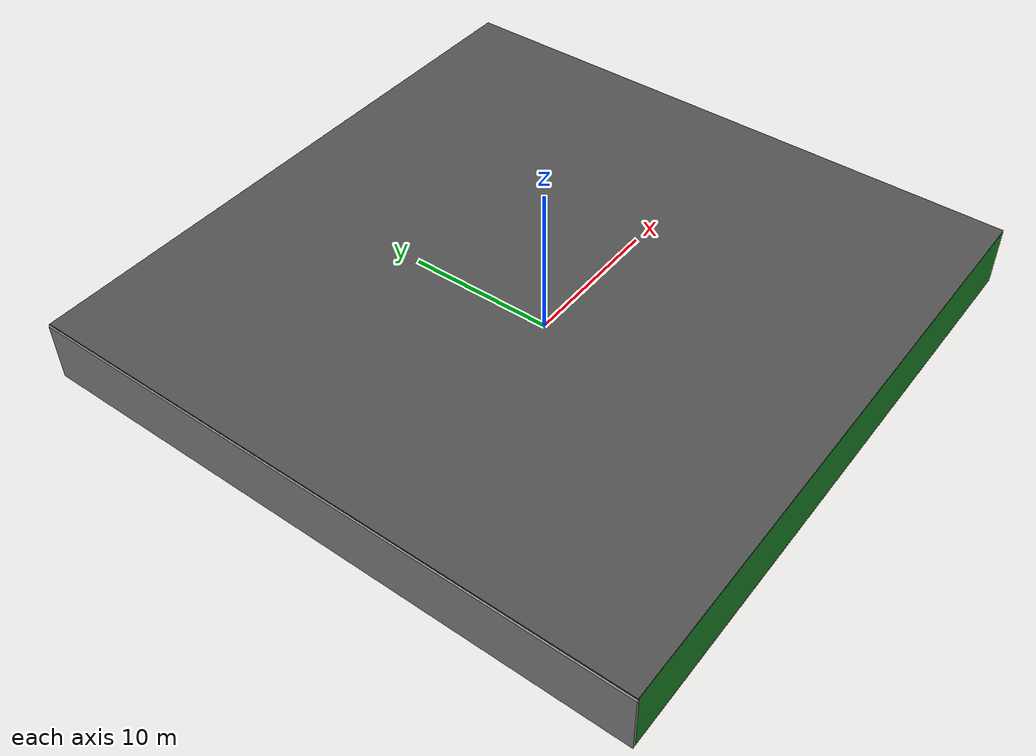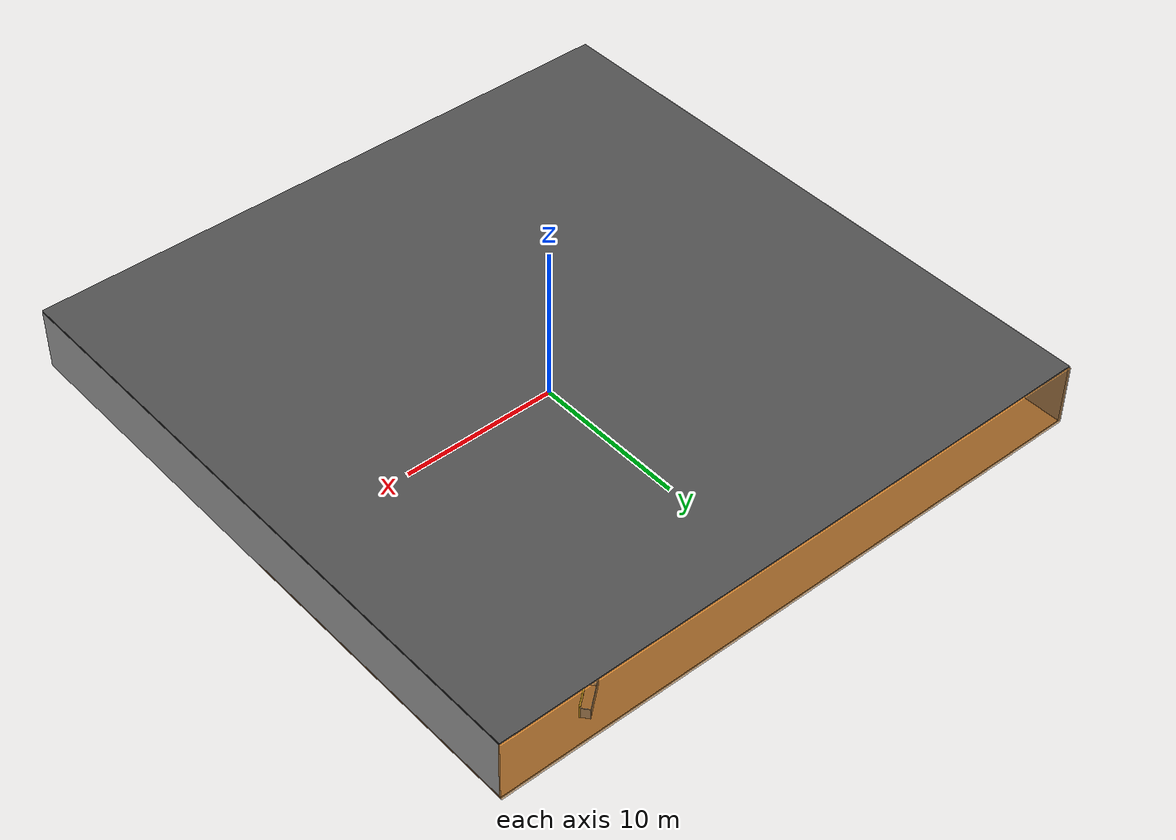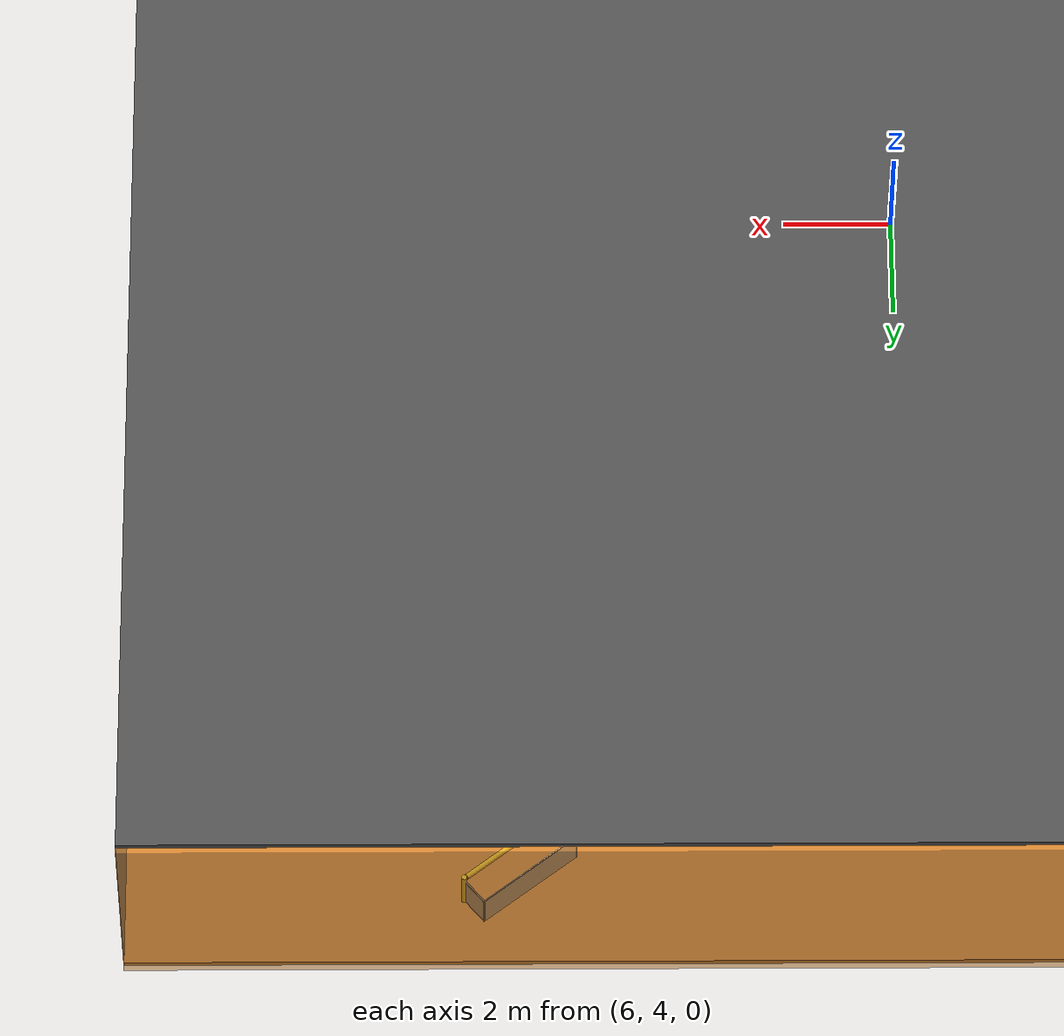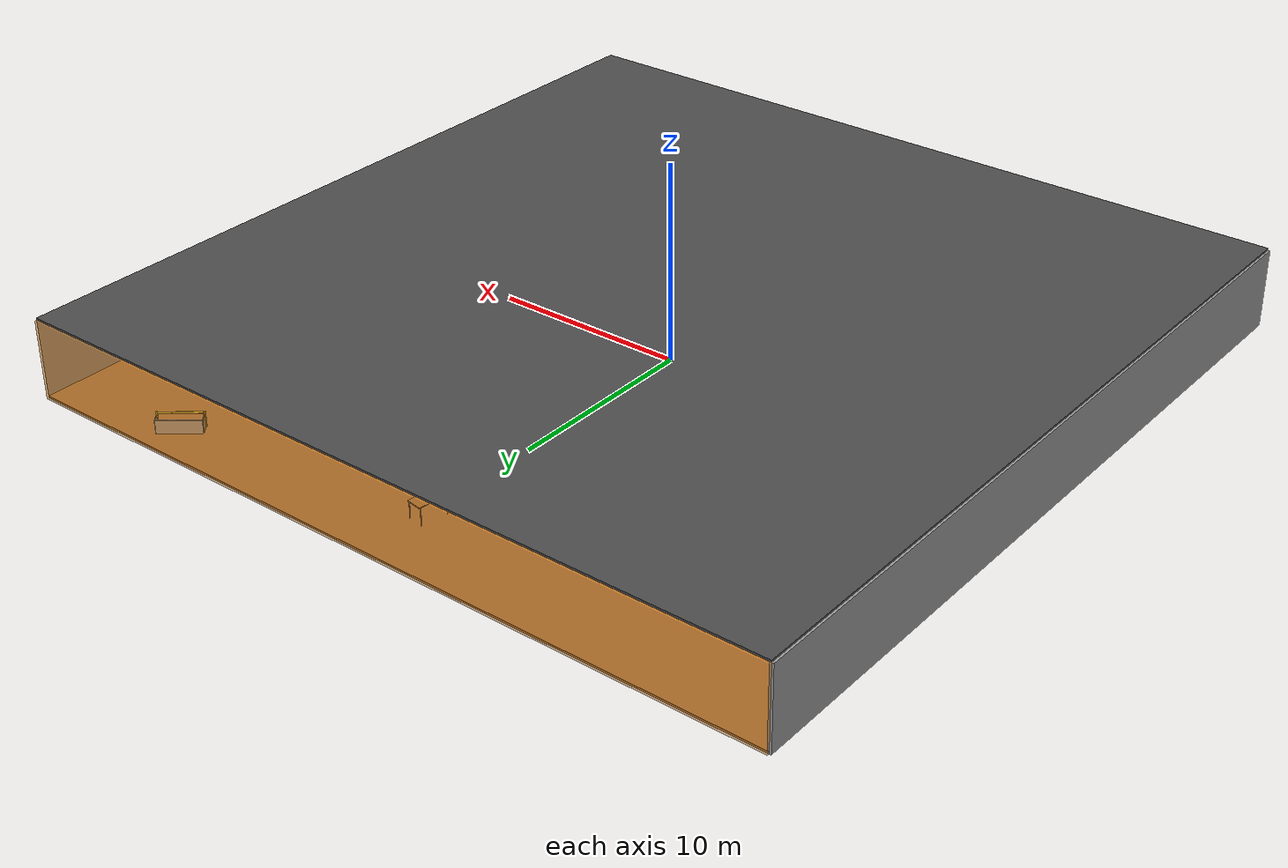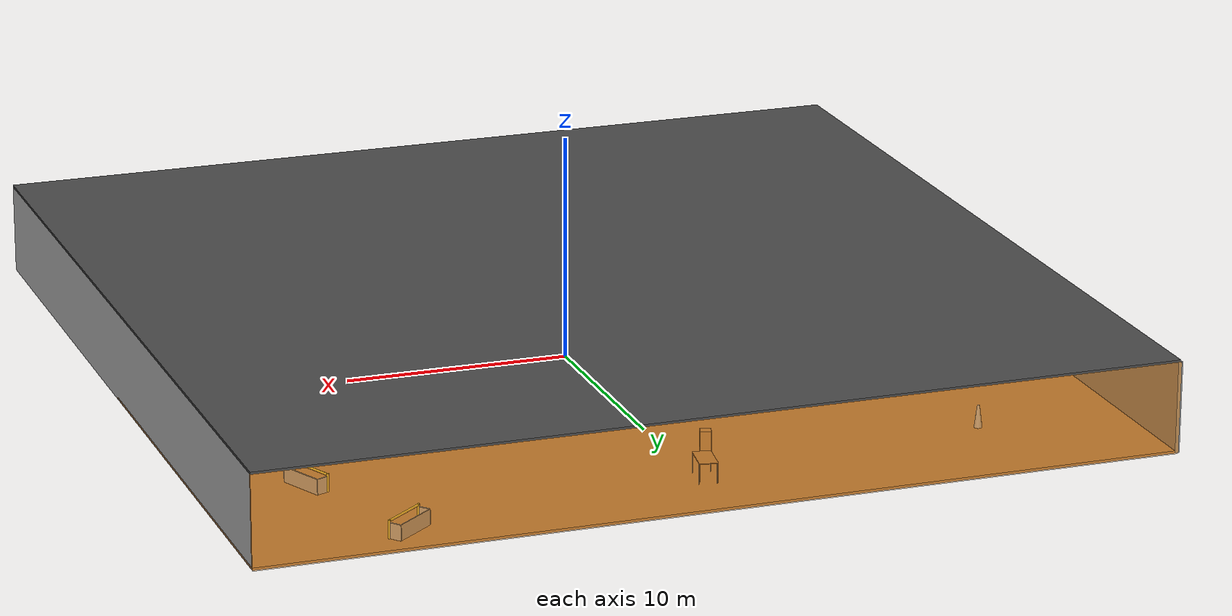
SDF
<sdf version="1.4">
 <world name="default">
  <physics type="ode">
   <max_step_size>0.001</max_step_size>
   <real_time_factor>1</real_time_factor>
   <real_time_update_rate>1000</real_time_update_rate>
   <gravity>0 0 -9.8</gravity>
  </physics>
  <scene><ambient>0.4 0.4 0.4 1</ambient><background>0.7 0.7 0.7 1</background><shadows>1</shadows></scene>
  <model name="Surrounding">
   <static>1</static>
   <link name="Ceiling">
    <collision name="Ceiling_Collision"><geometry><box><size>40 40 0.1</size></box></geometry></collision>
    <visual name="Ceiling_Visual">
     <geometry><box><size>40 40 0.1</size></box></geometry>
     <material>
      <script><uri>file://media/materials/scripts/gazebo.material</uri><name>Gazebo/DarkGrey</name></script>
     </material>
    </visual>
    <pose>0 0 4.05 0 0 0</pose>
   </link>
   <link name="Wall_South">
    <collision name="Wall_South_Collision">
     <geometry><box><size>40 0 4</size></box></geometry>
     <pose>0 0 2 0 -0 0</pose>
    </collision>
    <visual name="Wall_South_Visual">
     <pose>0 0 2 0 -0 0</pose>
     <geometry><box><size>40 0 4</size></box></geometry>
     <material>
      <script><uri>file://media/materials/scripts/gazebo.material</uri><name>Gazebo/GreenGlow</name></script>
     </material>
    </visual>
    <velocity_decay><linear>0</linear><angular>0</angular></velocity_decay>
    <pose>0 -20 0 0 -0 0</pose>
   </link>
   <link name="Wall_East">
    <collision name="Wall_21_Collision">
     <geometry><box><size>40 0 4</size></box></geometry>
     <pose>0 0 2 0 -0 0</pose>
    </collision>
    <visual name="Wall_21_Visual">
     <pose>0 0 2 0 -0 0</pose>
     <geometry><box><size>40 0 4</size></box></geometry>
     <material>
      <script><uri>file://media/materials/scripts/gazebo.material</uri><name>Gazebo/PioneerBody</name></script>
     </material>
    </visual>
    <velocity_decay><linear>0</linear><angular>0</angular></velocity_decay>
    <pose>20 0 0 0 -0 1.5708</pose>
   </link>
   <link name="Wall_North">
    <collision name="Wall_22_Collision">
     <geometry><box><size>40 0.2 4</size></box></geometry>
     <pose>0 0 2 0 -0 0</pose>
    </collision>
    <visual name="Wall_22_Visual">
     <pose>0 0 2 0 -0 0</pose>
     <geometry><box><size>40 0.2 4</size></box></geometry>
     <material>
      <script>
       <uri>file://media/materials/scripts/gazebo.material</uri>
       <name>Gazebo/OrangeTransparent</name>
      </script>
     </material>
    </visual>
    <velocity_decay><linear>0</linear><angular>0</angular></velocity_decay>
    <pose>0 20 0 0 -0 0</pose>
   </link>
   <link name="Wall_West">
    <collision name="Wall_23_Collision">
     <geometry><box><size>40 0.2 4</size></box></geometry>
     <pose>0 0 2 0 -0 0</pose>
    </collision>
    <visual name="Wall_23_Visual">
     <pose>0 0 2 0 -0 0</pose>
     <geometry><box><size>40 0.2 4</size></box></geometry>
     <material>
      <script><uri>file://media/materials/scripts/gazebo.material</uri><name>Gazebo/GreyGradientSky</name></script>
     </material>
    </visual>
    <velocity_decay><linear>0</linear><angular>0</angular></velocity_decay>
    <pose>-20 0 0 0 0 -1.5708</pose>
   </link>
   <link name="Ground_link">
    <collision name="collision">
     <pose>0 0 .05 0 -0 0</pose>
     <geometry><box><size>40 40 0.1</size></box></geometry>
    </collision>
    <visual name="visual">
     <pose>0 0 .05 0 -0 0</pose>
     <geometry><box><size>40 40 0.1</size></box></geometry>
     <material>
      <script><uri>file://media/materials/scripts/gazebo.material</uri><name>Gazebo/WoodFloor</name></script>
     </material>
    </visual>
   </link>
   <static>1</static>
  </model>
  <spherical_coordinates>
   <surface_model>EARTH_WGS84</surface_model>
   <latitude_deg>0</latitude_deg>
   <longitude_deg>0</longitude_deg>
   <elevation>0</elevation>
   <heading_deg>0</heading_deg>
  </spherical_coordinates>
  <light name="lightball_0" type="diffuse">
   <diffuse>0.8 0.8 0.8 1</diffuse>
   <specular>0.2 0.2 0.2 1</specular>
   <attenuation>
    <range>100</range>
    <constant>0.7</constant>
    <linear>0.01</linear>
    <quadratic>0.001</quadratic>
   </attenuation>
   <direction>-0.5 0.1 -0.9</direction>
   <pose>-11.2024669548 14.5292063001 3.18521496419 0 0 0</pose>
  </light>
  <light name="lightball_1" type="diffuse">
   <diffuse>0.8 0.8 0.8 1</diffuse>
   <specular>0.2 0.2 0.2 1</specular>
   <attenuation>
    <range>100</range>
    <constant>0.7</constant>
    <linear>0.01</linear>
    <quadratic>0.001</quadratic>
   </attenuation>
   <direction>-0.5 0.1 -0.9</direction>
   <pose>2.22100655399 5.8215981687 0.825889475827 0 0 0</pose>
  </light>
  <light name="lightball_2" type="diffuse">
   <diffuse>0.8 0.8 0.8 1</diffuse>
   <specular>0.2 0.2 0.2 1</specular>
   <attenuation>
    <range>100</range>
    <constant>0.7</constant>
    <linear>0.01</linear>
    <quadratic>0.001</quadratic>
   </attenuation>
   <direction>-0.5 0.1 -0.9</direction>
   <pose>7.01394713382 -15.8827736787 2.11538101863 0 0 0</pose>
  </light>
  <light name="lightball_3" type="diffuse">
   <diffuse>0.8 0.8 0.8 1</diffuse>
   <specular>0.2 0.2 0.2 1</specular>
   <attenuation>
    <range>100</range>
    <constant>0.7</constant>
    <linear>0.01</linear>
    <quadratic>0.001</quadratic>
   </attenuation>
   <direction>-0.5 0.1 -0.9</direction>
   <pose>15.4226894012 18.4603466748 1.04185823248 0 0 0</pose>
  </light>
  <light name="lightball_4" type="diffuse">
   <diffuse>0.8 0.8 0.8 1</diffuse>
   <specular>0.2 0.2 0.2 1</specular>
   <attenuation>
    <range>100</range>
    <constant>0.7</constant>
    <linear>0.01</linear>
    <quadratic>0.001</quadratic>
   </attenuation>
   <direction>-0.5 0.1 -0.9</direction>
   <pose>10.0286467758 -19.6239503407 2.54682307506 0 0 0</pose>
  </light>
  <light name="lightball_5" type="diffuse">
   <diffuse>0.8 0.8 0.8 1</diffuse>
   <specular>0.2 0.2 0.2 1</specular>
   <attenuation>
    <range>100</range>
    <constant>0.7</constant>
    <linear>0.01</linear>
    <quadratic>0.001</quadratic>
   </attenuation>
   <direction>-0.5 0.1 -0.9</direction>
   <pose>2.42760332793 19.2177925507 2.44786970151 0 0 0</pose>
  </light>
  <include><uri>model://cabinet</uri><pose>-17.6371345707 -11.7559212116 0 0 0 0.656910330515</pose></include>
  <include><uri>model://cabinet</uri><pose>-18.1849477725 5.38823880786 0 0 0 0.160153309131</pose></include>
  <include><uri>model://cabinet</uri><pose>-13.8239643648 -17.187493894 0 0 0 0.835824105434</pose></include>
  <include>
   <uri>model://construction_cone</uri>
   <pose>-13.3234269039 14.6326263651 0 0 0 0.330828448212</pose>
  </include>
  <include>
   <uri>model://construction_cone</uri>
   <pose>-10.6776968846 -7.47628556825 0 0 0 2.67711393872</pose>
  </include>
  <include>
   <uri>model://robocup_3Dsim_goal</uri>
   <pose>-8.02058068868 -15.4602053154 0 0 0 1.60592252497</pose>
  </include>
  <include><uri>model://cabinet</uri><pose>-9.40348007085 -9.02437597025 0 0 0 1.64572264755</pose></include>
  <include>
   <uri>model://construction_cone</uri>
   <pose>-5.44039520827 -3.40131152349 0 0 0 2.20016047458</pose>
  </include>
  <include><uri>model://table</uri><pose>-4.66270370555 9.31044093716 0 0 0 2.7353218819</pose></include>
  <include><uri>model://table</uri><pose>-1.76154187603 -16.6387911695 0 0 0 1.24107064402</pose></include>
  <include><uri>model://table</uri><pose>-2.34615524948 -2.70028337441 0 0 0 1.91306058289</pose></include>
  <include><uri>model://cabinet</uri><pose>-1.43728526975 13.5080600587 0 0 0 1.26600977803</pose></include>
  <include><uri>model://cabinet</uri><pose>0.493820774224 -0.514089433679 0 0 0 0.433514762496</pose></include>
  <include><uri>model://table</uri><pose>-0.270981672029 16.5218078333 0 0 0 1.41509416464</pose></include>
  <include>
   <uri>model://robocup_3Dsim_goal</uri>
   <pose>2.60667083007 -16.4110877846 0 0 0 2.30018011978</pose>
  </include>
  <include><uri>model://cabinet</uri><pose>3.68722957251 3.02536026409 0 0 0 3.03218073351</pose></include>
  <include><uri>model://table</uri><pose>3.56326244576 8.83729513001 0 0 0 1.64487793715</pose></include>
  <include>
   <uri>model://textured_shapes</uri>
   <pose>9.39890552121 -18.4054815177 0 0 0 1.72932135678</pose>
  </include>
  <include>
   <uri>model://textured_shapes</uri>
   <pose>12.6438552701 -16.5485093315 0 0 0 0.767943564843</pose>
  </include>
  <include><uri>model://cabinet</uri><pose>12.8470159202 -14.9695047365 0 0 0 0.911565126126</pose></include>
  <include>
   <uri>model://textured_shapes</uri>
   <pose>11.9918417826 -8.41117617995 0 0 0 1.15705939074</pose>
  </include>
  <include>
   <uri>model://robocup_3Dsim_goal</uri>
   <pose>12.7910038047 0.98316243489 0 0 0 2.9946835872</pose>
  </include>
  <include>
   <uri>model://robocup_3Dsim_goal</uri>
   <pose>13.1669823386 18.0847181599 0 0 0 2.25008294929</pose>
  </include>
  <include>
   <uri>model://robocup_3Dsim_goal</uri>
   <pose>15.2099296201 11.9749994576 0 0 0 0.418172939096</pose>
  </include>
  <include>
   <uri>model://robocup_3Dsim_goal</uri>
   <pose>17.8874608742 -16.7239857272 0 0 0 2.77252788491</pose>
  </include>
  <include>
   <uri>model://construction_cone</uri>
   <pose>17.5894765569 -10.8300096534 0 0 0 0.0351129887867</pose>
  </include>
  <include><uri>model://table</uri><pose>18.6181020324 -7.96321213314 0 0 0 2.99743650782</pose></include>
  <include>
   <uri>model://textured_shapes</uri>
   <pose>17.6707247148 -3.26909485154 0 0 0 2.37704978614</pose>
  </include>
 </world>
</sdf>

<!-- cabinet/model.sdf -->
<sdf version="1.5">
  <model name="cabinet">
    <static>true</static>
    <link name="cabinet_bottom_plate">
      <inertial>
        <pose>0 0 -1 0 0 0</pose>
        <inertia>
          <ixx>2.050000</ixx>
          <ixy>0</ixy>
          <ixz>0</ixz>
          <iyy>2.050000</iyy>
          <iyz>0</iyz>
          <izz>2.050000</izz>
        </inertia>
        <mass>25.000000</mass>
      </inertial>
      <collision name="cabinet_bottom_plate_geom">
        <pose>0 0 0.010000 0 0 0</pose>
        <geometry>
          <box>
            <size>0.450000 0.450000 0.020000</size>
          </box>
        </geometry>
      </collision>
      <visual name="cabinet_bottom_plate_geom_visual">
        <pose>0 0 0.010000 0 0 0</pose>
        <geometry>
          <box>
            <size>0.450000 0.450000 0.020000</size>
          </box>
        </geometry>
        <material>
          <script>
            <uri>model://media/materials/scripts/gazebo.material</uri>
            <name>Gazebo/Wood</name>
          </script>
        </material>
      </visual>
      <collision name="cabinet_bottom_plate_geom_cabinet_back_plate">
        <pose>0.235000 0 0.510000 0 0 0</pose>
        <geometry>
          <box>
            <size>0.020000 0.450000 1.020000</size>
          </box>
        </geometry>
      </collision>
      <visual name="cabinet_bottom_plate_geom_cabinet_back_plate_visual">
        <pose>0.235000 0 0.510000 0 0 0</pose>
        <geometry>
          <box>
            <size>0.020000 0.450000 1.020000</size>
          </box>
        </geometry>
        <material>
          <script>
            <uri>model://media/materials/scripts/gazebo.material</uri>
            <name>Gazebo/Wood</name>
          </script>
        </material>
      </visual>
      <collision name="cabinet_bottom_plate_geom_cabinet_left_plate">
        <pose>0 0.235000 0.510000 0 0 0</pose>
        <geometry>
          <box>
            <size>0.450000 0.020000 1.020000</size>
          </box>
        </geometry>
      </collision>
      <visual name="cabinet_bottom_plate_geom_cabinet_left_plate_visual">
        <pose>0 0.235000 0.510000 0 0 0</pose>
        <geometry>
          <box>
            <size>0.450000 0.020000 1.020000</size>
          </box>
        </geometry>
        <material>
          <script>
            <uri>model://media/materials/scripts/gazebo.material</uri>
            <name>Gazebo/Wood</name>
          </script>
        </material>
      </visual>
      <collision name="cabinet_bottom_plate_geom_cabinet_middle_plate">
        <pose>0 0 0.510000 0 0 0</pose>
        <geometry>
          <box>
            <size>0.450000 0.450000 0.020000</size>
          </box>
        </geometry>
      </collision>
      <visual name="cabinet_bottom_plate_geom_cabinet_middle_plate_visual">
        <pose>0 0 0.510000 0 0 0</pose>
        <geometry>
          <box>
            <size>0.450000 0.450000 0.020000</size>
          </box>
        </geometry>
        <material>
          <script>
            <uri>model://media/materials/scripts/gazebo.material</uri>
            <name>Gazebo/Wood</name>
          </script>
        </material>
      </visual>
      <collision name="cabinet_bottom_plate_geom_cabinet_right_plate">
        <pose>0 -0.235000 0.510000 0 0 0</pose>
        <geometry>
          <box>
            <size>0.450000 0.020000 1.020000</size>
          </box>
        </geometry>
      </collision>
      <visual name="cabinet_bottom_plate_geom_cabinet_right_plate_visual">
        <pose>0 -0.235000 0.510000 0 0 0</pose>
        <geometry>
          <box>
            <size>0.450000 0.020000 1.020000</size>
          </box>
        </geometry>
        <material>
          <script>
            <uri>model://media/materials/scripts/gazebo.material</uri>
            <name>Gazebo/Wood</name>
          </script>
        </material>
      </visual>
      <collision name="cabinet_bottom_plate_geom_cabinet_top_plate">
        <pose>0 0 1.010000 0 0 0</pose>
        <geometry>
          <box>
            <size>0.450000 0.450000 0.020000</size>
          </box>
        </geometry>
      </collision>
      <visual name="cabinet_bottom_plate_geom_cabinet_top_plate_visual">
        <pose>0 0 1.010000 0 0 0</pose>
        <geometry>
          <box>
            <size>0.450000 0.450000 0.020000</size>
          </box>
        </geometry>
        <material>
          <script>
            <uri>model://media/materials/scripts/gazebo.material</uri>
            <name>Gazebo/Wood</name>
          </script>
        </material>
      </visual>
    </link>
  </model>
</sdf>

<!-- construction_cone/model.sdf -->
<sdf version="1.5">
  <model name="Construction Cone">
    <link name="link">
      <collision name="collision">
        <geometry>
          <mesh>
            <scale>10 10 10</scale>
            <uri>file://isr-testbed/construction_cone/meshes/construction_cone.dae</uri>
          </mesh>
        </geometry>
      </collision>
      <visual name="visual">
        <geometry>
          <mesh>
            <scale>10 10 10</scale>
            <uri>file://isr-testbed/construction_cone/meshes/construction_cone.dae</uri>
          </mesh>
        </geometry>
      </visual>
    </link>
  </model>
</sdf>

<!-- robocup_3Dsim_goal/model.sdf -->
<sdf version="1.5">
  <model name="robocup_3d_goal">
    <static>true</static>
    <link name="left_post">
      <pose>0 1.05 0.45 0 0 0</pose>
      <collision name="collision">
        <geometry>
          <cylinder>
            <radius>0.05</radius>
            <length>0.9</length>
          </cylinder>
        </geometry>
      </collision>
      <visual name="visual">
        <geometry>
          <cylinder>
            <radius>0.05</radius>
            <length>0.9</length>
          </cylinder>
        </geometry>
        <material>
          <script>
            <uri>file://media/materials/scripts/gazebo.material</uri>
            <name>Gazebo/ZincYellow</name>
          </script>
        </material>
      </visual>
    </link>
    <link name="left_support_horiz_lower">
      <pose>0.30 1.05 0.01 0 0 0</pose>
      <collision name="collision">
        <geometry>
          <box>
            <size>0.50 0.02 0.02</size>
          </box>
        </geometry>
      </collision>
      <visual name="visual">
        <geometry>
          <box>
            <size>0.50 0.02 0.02</size>
          </box>
        </geometry>
        <material>
          <script>
            <uri>file://media/materials/scripts/gazebo.material</uri>
            <name>Gazebo/White</name>
          </script>
        </material>
      </visual>
    </link>
    <link name="left_support_horiz_upper">
      <pose>0.30 1.05 0.79 0 0 0</pose>
      <collision name="collision">
        <geometry>
          <box>
            <size>0.50 0.02 0.02</size>
          </box>
        </geometry>
      </collision>
      <visual name="visual">
        <geometry>
          <box>
            <size>0.50 0.02 0.02</size>
          </box>
        </geometry>
        <material>
          <script>
            <uri>file://media/materials/scripts/gazebo.material</uri>
            <name>Gazebo/White</name>
          </script>
        </material>
      </visual>
    </link>
    <link name="left_support_vertical">
      <pose>0.56 1.05 0.4 0 1.5708 0</pose>
      <collision name="collision">
        <geometry>
          <box>
            <size>0.80 0.02 0.02</size>
          </box>
        </geometry>
      </collision>
      <visual name="visual">
        <geometry>
          <box>
            <size>0.80 0.02 0.02</size>
          </box>
        </geometry>
        <material>
          <script>
            <uri>file://media/materials/scripts/gazebo.material</uri>
            <name>Gazebo/White</name>
          </script>
        </material>
      </visual>
    </link>
    <link name="right_support_horiz_lower">
      <pose>0.30 -1.05 0.01 0 0 0</pose>
      <collision name="collision">
        <geometry>
          <box>
            <size>0.50 0.02 0.02</size>
          </box>
        </geometry>
      </collision>
      <visual name="visual">
        <geometry>
          <box>
            <size>0.50 0.02 0.02</size>
          </box>
        </geometry>
        <material>
          <script>
            <uri>file://media/materials/scripts/gazebo.material</uri>
            <name>Gazebo/White</name>
          </script>
        </material>
      </visual>
    </link>
    <link name="right_support_horiz_upper">
      <pose>0.30 -1.05 0.79 0 0 0</pose>
      <collision name="collision">
        <geometry>
          <box>
            <size>0.50 0.02 0.02</size>
          </box>
        </geometry>
      </collision>
      <visual name="visual">
        <geometry>
          <box>
            <size>0.50 0.02 0.02</size>
          </box>
        </geometry>
        <material>
          <script>
            <uri>file://media/materials/scripts/gazebo.material</uri>
            <name>Gazebo/White</name>
          </script>
        </material>
      </visual>
    </link>
    <link name="right_support_vertical">
      <pose>0.56 -1.05 0.4 0 1.5708 0</pose>
      <collision name="collision">
        <geometry>
          <box>
            <size>0.80 0.02 0.02</size>
          </box>
        </geometry>
      </collision>
      <visual name="visual">
        <geometry>
          <box>
            <size>0.80 0.02 0.02</size>
          </box>
        </geometry>
        <material>
          <script>
            <uri>file://media/materials/scripts/gazebo.material</uri>
            <name>Gazebo/White</name>
          </script>
        </material>
      </visual>
    </link>
    <link name="center_support_horiz_lower">
      <pose>0.56 0 0.01 0 1.5708 0</pose>
      <collision name="collision">
        <geometry>
          <box>
            <size>0.02 2.08 0.02</size>
          </box>
        </geometry>
      </collision>
      <visual name="visual">
        <geometry>
          <box>
            <size>0.02 2.08 0.02</size>
          </box>
        </geometry>
        <material>
          <script>
            <uri>file://media/materials/scripts/gazebo.material</uri>
            <name>Gazebo/White</name>
          </script>
        </material>
      </visual>
    </link>
    <link name="center_support_horiz_upper">
      <pose>0.56 0 0.79 0 1.5708 0</pose>
      <collision name="collision">
        <geometry>
          <box>
            <size>0.02 2.08 0.02</size>
          </box>
        </geometry>
      </collision>
      <visual name="visual">
        <geometry>
          <box>
            <size>0.02 2.08 0.02</size>
          </box>
        </geometry>
        <material>
          <script>
            <uri>file://media/materials/scripts/gazebo.material</uri>
            <name>Gazebo/White</name>
          </script>
        </material>
      </visual>
    </link>
    <link name="right_post">
      <pose>0 -1.05 0.45 0 0 0</pose>
      <collision name="collision">
        <geometry>
          <cylinder>
            <radius>0.05</radius>
            <length>0.9</length>
          </cylinder>
        </geometry>
      </collision>
      <visual name="visual">
        <geometry>
          <cylinder>
            <radius>0.05</radius>
            <length>0.9</length>
          </cylinder>
        </geometry>
        <material>
          <script>
            <uri>file://media/materials/scripts/gazebo.material</uri>
            <name>Gazebo/ZincYellow</name>
          </script>
        </material>
      </visual>
    </link>
    <link name="crossbar">
      <pose>0 0 0.85 1.57 1.57 0</pose>
      <collision name="collision">
        <geometry>
          <cylinder>
            <radius>0.05</radius>
            <length>2.0</length>
          </cylinder>
        </geometry>
      </collision>
      <visual name="visual">
        <geometry>
          <cylinder>
            <radius>0.05</radius>
            <length>2.0</length>
          </cylinder>
        </geometry>
        <material>
          <script>
            <uri>file://media/materials/scripts/gazebo.material</uri>
            <name>Gazebo/ZincYellow</name>
          </script>
        </material>
      </visual>
    </link>
    <link name="center_net">
      <pose>0.56 0 0.40 0 0 0</pose>
      <collision name="collision">
        <geometry>
          <box>
            <size>0.01 2.1 0.80</size>
          </box>
        </geometry>
      </collision>
      <visual name="visual">
        <geometry>
          <box>
            <size>0.01 2.1 0.80</size>
          </box>
        </geometry>
        <material>
          <script>
            <uri>model://../model_source/models/robocup09_spl_field/materials/scripts/</uri>
            <uri>model://../model_source/models/robocup09_spl_field/materials/textures/</uri>
            <name>RoboCup/Net</name>
          </script>
        </material>
      </visual>
    </link>
    <link name="left_net">
      <pose>0.30 1.05 0.40 0 0 0</pose>
      <collision name="collision">
        <geometry>
          <box>
            <size>0.50 0.01 0.76</size>
          </box>
        </geometry>
      </collision>
      <visual name="visual">
        <geometry>
          <box>
            <size>0.50 0.01 0.76</size>
          </box>
        </geometry>
        <material>
          <script>
            <uri>model://../model_source/models/robocup09_spl_field/materials/scripts/</uri>
            <uri>model://../model_source/models/robocup09_spl_field/materials/textures/</uri>
            <name>RoboCup/Net</name>
          </script>
        </material>
      </visual>
    </link>
    <link name="right_net">
      <pose>0.30 -1.05 0.40 0 0 0</pose>
      <collision name="collision">
        <geometry>
          <box>
            <size>0.50 0.01 0.76</size>
          </box>
        </geometry>
      </collision>
      <visual name="visual">
        <geometry>
          <box>
            <size>0.50 0.01 0.76</size>
          </box>
        </geometry>
        <material>
          <script>
            <uri>model://../model_source/models/robocup09_spl_field/materials/scripts/</uri>
            <uri>model://../model_source/models/robocup09_spl_field/materials/textures/</uri>
            <name>RoboCup/Net</name>
          </script>
        </material>
      </visual>
    </link>
  </model>
</sdf>

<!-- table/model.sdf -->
<sdf version="1.5">
  <model name="table">
    <static>true</static>
    <link name="link">
      <collision name="surface">
        <pose>0 0 1.0 0 0 0</pose>
        <geometry>
          <box>
            <size>1.5 0.8 0.03</size>
          </box>
        </geometry>
        <surface>
          <friction>
            <ode>
              <mu>0.6</mu>
              <mu2>0.6</mu2>
            </ode>
          </friction>
        </surface>
      </collision>
      <visual name="visual1">
        <pose>0 0 1.0 0 0 0</pose>
        <geometry>
          <box>
            <size>1.5 0.8 0.03</size>
          </box>
        </geometry>
        <material>
          <script>
            <uri>model://media/materials/scripts/gazebo.material</uri>
            <name>Gazebo/Wood</name>
          </script>
        </material>
      </visual>
      <collision name="front_left_leg">
        <pose>0.68 0.38 0.5 0 0 0</pose>
        <geometry>
          <cylinder>
            <radius>0.02</radius>
            <length>1.0</length>
          </cylinder>
        </geometry>
      </collision>
      <visual name="front_left_leg">
        <pose>0.68 0.38 0.5 0 0 0</pose>
        <geometry>
          <cylinder>
            <radius>0.02</radius>
            <length>1.0</length>
          </cylinder>
        </geometry>
        <material>
          <script>
            <uri>model://media/materials/scripts/gazebo.material</uri>
            <name>Gazebo/Grey</name>
          </script>
        </material>
      </visual>
      <collision name="front_right_leg">
        <pose>0.68 -0.38 0.5 0 0 0</pose>
        <geometry>
          <cylinder>
            <radius>0.02</radius>
            <length>1.0</length>
          </cylinder>
        </geometry>
      </collision>
      <visual name="front_right_leg">
        <pose>0.68 -0.38 0.5 0 0 0</pose>
        <geometry>
          <cylinder>
            <radius>0.02</radius>
            <length>1.0</length>
          </cylinder>
        </geometry>
        <material>
          <script>
            <uri>model://media/materials/scripts/gazebo.material</uri>
            <name>Gazebo/Grey</name>
          </script>
        </material>
      </visual>
      <collision name="back_right_leg">
        <pose>-0.68 -0.38 0.5 0 0 0</pose>
        <geometry>
          <cylinder>
            <radius>0.02</radius>
            <length>1.0</length>
          </cylinder>
        </geometry>
      </collision>
      <visual name="back_right_leg">
        <pose>-0.68 -0.38 0.5 0 0 0</pose>
        <geometry>
          <cylinder>
            <radius>0.02</radius>
            <length>1.0</length>
          </cylinder>
        </geometry>
        <material>
          <script>
            <uri>model://media/materials/scripts/gazebo.material</uri>
            <name>Gazebo/Grey</name>
          </script>
        </material>
      </visual>
      <collision name="back_left_leg">
        <pose>-0.68 0.38 0.5 0 0 0</pose>
        <geometry>
          <cylinder>
            <radius>0.02</radius>
            <length>1.0</length>
          </cylinder>
        </geometry>
      </collision>
      <visual name="back_left_leg">
        <pose>-0.68 0.38 0.5 0 0 0</pose>
        <geometry>
          <cylinder>
            <radius>0.02</radius>
            <length>1.0</length>
          </cylinder>
        </geometry>
        <material>
          <script>
            <uri>model://media/materials/scripts/gazebo.material</uri>
            <name>Gazebo/Grey</name>
          </script>
        </material>
      </visual>
    </link>
  </model>
</sdf>

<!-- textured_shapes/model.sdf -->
<sdf version="1.6">
  <model name="textured_shapes">
    <pose>0 0 0.5 0 0 0</pose>
    <link name="box">
      <pose>0 -1.5 0 0 0 0</pose>
      <collision name="collision">
        <geometry>
          <box>
            <size>1 1 1</size>
          </box>
        </geometry>
      </collision>
      <visual name="visual">
        <geometry>
          <box>
            <size>1 1 1</size>
          </box>
        </geometry>
        <material>
          <script>
            <uri>model://../model_source/models/textured_shapes/materials/scripts</uri>
            <uri>model://../model_source/models/textured_shapes/materials/textures</uri>
            <name>TexturedShape/Squares</name>
          </script>
        </material>
      </visual>
    </link>
    <link name="sphere">
      <collision name="collision">
        <geometry>
          <sphere>
            <radius>0.5</radius>
          </sphere>
        </geometry>
      </collision>
      <visual name="visual">
        <geometry>
          <sphere>
            <radius>0.5</radius>
          </sphere>
        </geometry>
        <material>
          <script>
            <uri>model://../model_source/models/textured_shapes/materials/scripts</uri>
            <uri>model://../model_source/models/textured_shapes/materials/textures</uri>
            <name>TexturedShape/Squares</name>
          </script>
        </material>
      </visual>
    </link>
    <link name="cylinder">
      <pose>0 1.5 0 0 0 0</pose>
      <collision name="collision">
        <geometry>
          <cylinder>
            <radius>0.5</radius>
            <length>1</length>
          </cylinder>
        </geometry>
      </collision>
      <visual name="visual">
        <geometry>
          <cylinder>
            <radius>0.5</radius>
            <length>1</length>
          </cylinder>
        </geometry>
        <material>
          <script>
            <uri>model://../model_source/models/textured_shapes/materials/scripts</uri>
            <uri>model://../model_source/models/textured_shapes/materials/textures</uri>
            <name>TexturedShape/Squares</name>
          </script>
        </material>
      </visual>
    </link>
  </model>
</sdf>
